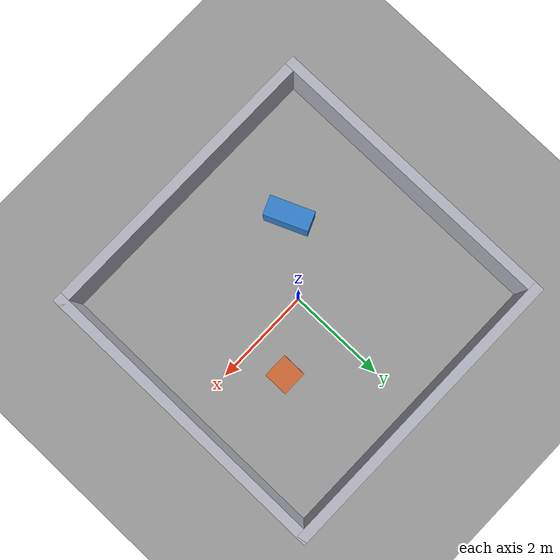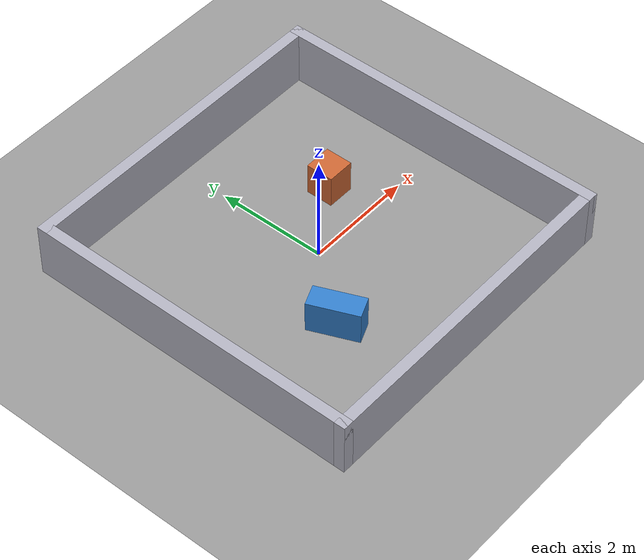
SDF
<?xml version="1.0"?>
<sdf version="1.9">
  <world name="mecanum_test_room">
    <physics name="1ms" type="ignored">
      <max_step_size>0.001</max_step_size>
      <real_time_factor>1.0</real_time_factor>
    </physics>
    <plugin filename="gz-sim-physics-system" name="gz::sim::systems::Physics"/>
    <plugin filename="gz-sim-user-commands-system" name="gz::sim::systems::UserCommands"/>
    <plugin filename="gz-sim-scene-broadcaster-system" name="gz::sim::systems::SceneBroadcaster"/>
    <!-- Required for the LIDAR's gpu_lidar sensor (defined in
         mecanum_robot.urdf.xacro) to actually produce data. -->
    <plugin filename="gz-sim-sensors-system" name="gz::sim::systems::Sensors">
      <render_engine>ogre2</render_engine>
    </plugin>

    <light type="directional" name="sun">
      <cast_shadows>true</cast_shadows>
      <pose>0 0 10 0 0 0</pose>
      <diffuse>0.8 0.8 0.8 1</diffuse>
      <specular>0.2 0.2 0.2 1</specular>
      <direction>-0.5 0.1 -0.9</direction>
    </light>

    <model name="ground_plane">
      <static>true</static>
      <link name="link">
        <collision name="collision">
          <geometry><plane><normal>0 0 1</normal><size>100 100</size></plane></geometry>
        </collision>
        <visual name="visual">
          <geometry><plane><normal>0 0 1</normal><size>100 100</size></plane></geometry>
          <material><ambient>0.6 0.6 0.6 1</ambient><diffuse>0.6 0.6 0.6 1</diffuse></material>
        </visual>
      </link>
    </model>

    <!-- ---- 6m x 6m room boundary, 0.2m thick walls, 1m tall ---- -->
    <model name="wall_north">
      <static>true</static>
      <pose>0 3 0.5 0 0 0</pose>
      <link name="link">
        <collision name="collision"><geometry><box><size>6.2 0.2 1.0</size></box></geometry></collision>
        <visual name="visual"><geometry><box><size>6.2 0.2 1.0</size></box></geometry>
          <material><ambient>0.7 0.7 0.75 1</ambient><diffuse>0.7 0.7 0.75 1</diffuse></material></visual>
      </link>
    </model>
    <model name="wall_south">
      <static>true</static>
      <pose>0 -3 0.5 0 0 0</pose>
      <link name="link">
        <collision name="collision"><geometry><box><size>6.2 0.2 1.0</size></box></geometry></collision>
        <visual name="visual"><geometry><box><size>6.2 0.2 1.0</size></box></geometry>
          <material><ambient>0.7 0.7 0.75 1</ambient><diffuse>0.7 0.7 0.75 1</diffuse></material></visual>
      </link>
    </model>
    <model name="wall_east">
      <static>true</static>
      <pose>3 0 0.5 0 0 1.5708</pose>
      <link name="link">
        <collision name="collision"><geometry><box><size>6.2 0.2 1.0</size></box></geometry></collision>
        <visual name="visual"><geometry><box><size>6.2 0.2 1.0</size></box></geometry>
          <material><ambient>0.7 0.7 0.75 1</ambient><diffuse>0.7 0.7 0.75 1</diffuse></material></visual>
      </link>
    </model>
    <model name="wall_west">
      <static>true</static>
      <pose>-3 0 0.5 0 0 1.5708</pose>
      <link name="link">
        <collision name="collision"><geometry><box><size>6.2 0.2 1.0</size></box></geometry></collision>
        <visual name="visual"><geometry><box><size>6.2 0.2 1.0</size></box></geometry>
          <material><ambient>0.7 0.7 0.75 1</ambient><diffuse>0.7 0.7 0.75 1</diffuse></material></visual>
      </link>
    </model>

    <!-- ---- interior obstacles, so the room isn't just a featureless box ---- -->
    <model name="obstacle_box_1">
      <static>true</static>
      <pose>1.2 0.8 0.3 0 0 0</pose>
      <link name="link">
        <collision name="collision"><geometry><box><size>0.5 0.5 0.6</size></box></geometry></collision>
        <visual name="visual"><geometry><box><size>0.5 0.5 0.6</size></box></geometry>
          <material><ambient>0.8 0.4 0.2 1</ambient><diffuse>0.8 0.4 0.2 1</diffuse></material></visual>
      </link>
    </model>
    <model name="obstacle_box_2">
      <static>true</static>
      <pose>-1.0 -1.2 0.3 0 0 0.4</pose>
      <link name="link">
        <collision name="collision"><geometry><box><size>0.4 0.9 0.6</size></box></geometry></collision>
        <visual name="visual"><geometry><box><size>0.4 0.9 0.6</size></box></geometry>
          <material><ambient>0.2 0.5 0.8 1</ambient><diffuse>0.2 0.5 0.8 1</diffuse></material></visual>
      </link>
    </model>
  </world>
</sdf>
